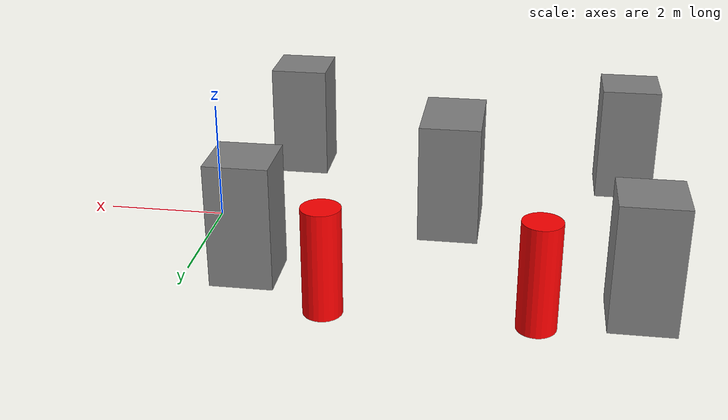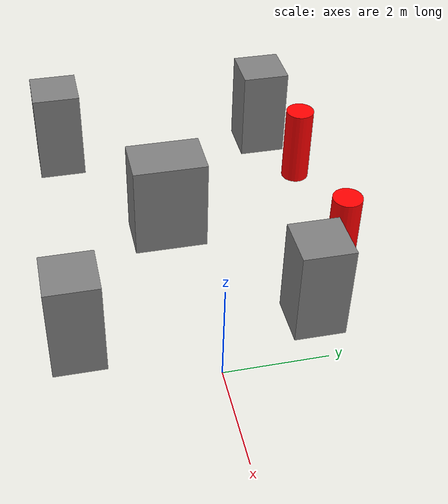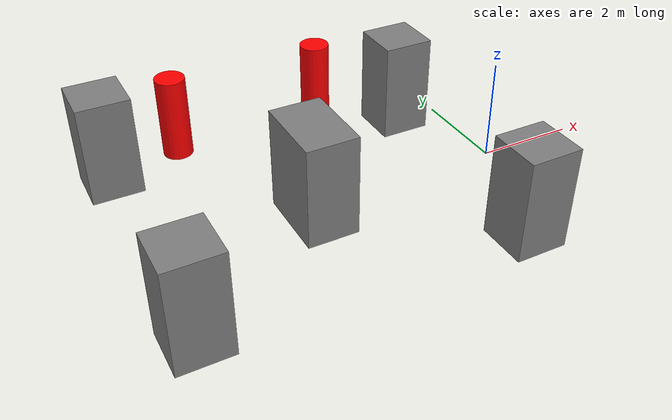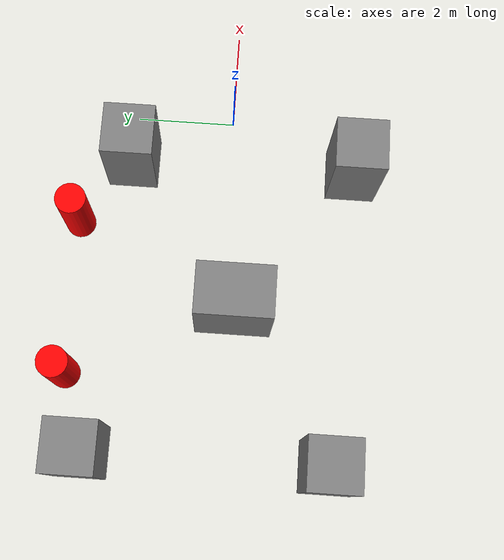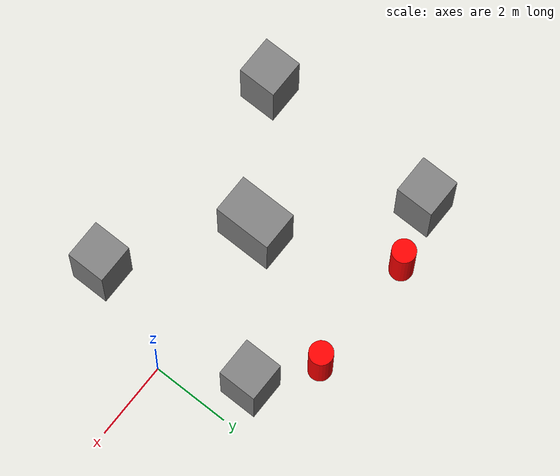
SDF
<sdf version='1.7'>
  <world name='default'>
    <!-- 动态障碍物：参考 generated_env.world 的格式 -->
    <!-- 障碍物1：从 (-2.38, 3) 到 (-2.38, -0.5) -->
    <model name='dynamic_cylinder_0_0.6_0.6_1.7'>
      <static>true</static>
      <pose>-2.38 3 0.85 0 0 0</pose> <!-- X, Y, Z, Roll, Pitch, Yaw -->
      <link name='link'>
        <visual name='visual'>
          <geometry>
            <cylinder>
              <radius>0.3</radius>
              <length>1.7</length>
            </cylinder>
          </geometry>
          <material>
            <ambient>1 0 0 1</ambient> <!-- Red color -->
            <diffuse>1 0 0 1</diffuse> <!-- Red color -->
            <specular>0.5 0.5 0.5 1</specular> <!-- Specular highlight -->
          </material>
        </visual>
      </link>
      <plugin name="obstacle_motion" filename="libobstaclePathPlugin.so">
        <orientation>false</orientation>
        <loop>1</loop>
        <velocity>0.4</velocity>
        <path>
          <waypoint>-2.38 3 0.85</waypoint>
          <waypoint>-2.38 -0.5 0.85</waypoint>
        </path>
      </plugin>
    </model>

    <!-- 障碍物2：从 (-5.5, 3) 到 (-5.5, -0.5) -->
    <model name='dynamic_cylinder_1_0.6_0.6_1.7'>
      <static>true</static>
      <pose>-5.5 3 0.85 0 0 0</pose> <!-- X, Y, Z, Roll, Pitch, Yaw -->
      <link name='link'>
        <visual name='visual'>
          <geometry>
            <cylinder>
              <radius>0.3</radius>
              <length>1.7</length>
            </cylinder>
          </geometry>
          <material>
            <ambient>1 0 0 1</ambient> <!-- Red color -->
            <diffuse>1 0 0 1</diffuse> <!-- Red color -->
            <specular>0.5 0.5 0.5 1</specular> <!-- Specular highlight -->
          </material>
        </visual>
      </link>
      <plugin name="obstacle_motion" filename="libobstaclePathPlugin.so">
        <orientation>false</orientation>
        <loop>1</loop>
        <velocity>0.4</velocity>
        <path>
          <waypoint>-5.5 3 0.85</waypoint>
          <waypoint>-5.5 -0.5 0.85</waypoint>
        </path>
      </plugin>
    </model>

    <!-- 静态长方体障碍物1 -->
    <model name='static_box_0'>
      <static>true</static>
      <pose>-1.0 2.0 1.0 0 0 0</pose> <!-- X, Y, Z(height/2), Roll, Pitch, Yaw -->
      <link name='link'>
        <visual name='visual'>
          <geometry>
            <box>
              <size>1.0 1.0 2.0</size> <!-- width, depth, height -->
            </box>
          </geometry>
          <material>
            <ambient>0.5 0.5 0.5 1</ambient> <!-- Gray color -->
            <diffuse>0.5 0.5 0.5 1</diffuse> <!-- Gray color -->
            <specular>0.3 0.3 0.3 1</specular> <!-- Specular highlight -->
          </material>
        </visual>
        <collision name='collision'>
          <geometry>
            <box>
              <size>1.0 1.0 2.0</size>
            </box>
          </geometry>
        </collision>
      </link>
    </model>

    <!-- 静态长方体障碍物2 -->
    <model name='static_box_1'>
      <static>true</static>
      <pose>-1.0 -2.5 1.0 0 0 0</pose>
      <link name='link'>
        <visual name='visual'>
          <geometry>
            <box>
              <size>1.0 1.0 2.0</size>
            </box>
          </geometry>
          <material>
            <ambient>0.5 0.5 0.5 1</ambient>
            <diffuse>0.5 0.5 0.5 1</diffuse>
            <specular>0.3 0.3 0.3 1</specular>
          </material>
        </visual>
        <collision name='collision'>
          <geometry>
            <box>
              <size>1.0 1.0 2.0</size>
            </box>
          </geometry>
        </collision>
      </link>
    </model>

    <!-- 静态长方体障碍物3 -->
    <model name='static_box_2'>
      <static>true</static>
      <pose>-7.0 2.5 1.0 0 0 0</pose>
      <link name='link'>
        <visual name='visual'>
          <geometry>
            <box>
              <size>1.0 1.0 2.0</size>
            </box>
          </geometry>
          <material>
            <ambient>0.5 0.5 0.5 1</ambient>
            <diffuse>0.5 0.5 0.5 1</diffuse>
            <specular>0.3 0.3 0.3 1</specular>
          </material>
        </visual>
        <collision name='collision'>
          <geometry>
            <box>
              <size>1.0 1.0 2.0</size>
            </box>
          </geometry>
        </collision>
      </link>
    </model>

    <!-- 静态长方体障碍物4 -->
    <model name='static_box_3'>
      <static>true</static>
      <pose>-7.0 -2.2 1.0 0 0 0</pose>
      <link name='link'>
        <visual name='visual'>
          <geometry>
            <box>
              <size>1.0 1.0 2.0</size>
            </box>
          </geometry>
          <material>
            <ambient>0.5 0.5 0.5 1</ambient>
            <diffuse>0.5 0.5 0.5 1</diffuse>
            <specular>0.3 0.3 0.3 1</specular>
          </material>
        </visual>
        <collision name='collision'>
          <geometry>
            <box>
              <size>1.0 1.0 2.0</size>
            </box>
          </geometry>
        </collision>
      </link>
    </model>

    <!-- 静态长方体障碍物5 -->
    <model name='static_box_4'>
      <static>true</static>
      <pose>-4.0 -0.25 1.0 0 0 0</pose>
      <link name='link'>
        <visual name='visual'>
          <geometry>
            <box>
              <size>1.0 1.5 2.0</size>
            </box>
          </geometry>
          <material>
            <ambient>0.5 0.5 0.5 1</ambient>
            <diffuse>0.5 0.5 0.5 1</diffuse>
            <specular>0.3 0.3 0.3 1</specular>
          </material>
        </visual>
        <collision name='collision'>
          <geometry>
            <box>
              <size>1.0 1.0 2.0</size>
            </box>
          </geometry>
        </collision>
      </link>
    </model>

    <light name='sun' type='directional'>
      <cast_shadows>1</cast_shadows>
      <pose>0 0 10 0 -0 0</pose>
      <diffuse>0.8 0.8 0.8 1</diffuse>
      <specular>0.2 0.2 0.2 1</specular>
      <attenuation>
        <range>1000</range>
        <constant>0.9</constant>
        <linear>0.01</linear>
        <quadratic>0.001</quadratic>
      </attenuation>
      <direction>-0.5 0.1 -0.9</direction>
      <spot>
        <inner_angle>0</inner_angle>
        <outer_angle>0</outer_angle>
        <falloff>0</falloff>
      </spot>
    </light>

    <model name='ground_plane'>
      <static>1</static>
      <link name='link'>
        <collision name='collision'>
          <geometry>
            <plane>
              <normal>0 0 1</normal>
              <size>100 100</size>
            </plane>
          </geometry>
        </collision>
      </link>
    </model>

    <physics type='ode'>
      <max_step_size>0.001</max_step_size>
      <real_time_factor>1</real_time_factor>
      <real_time_update_rate>1000</real_time_update_rate>
    </physics>

    <scene>
      <ambient>0.4 0.4 0.4 1</ambient>
      <background>0.7 0.7 0.7 1</background>
      <shadows>1</shadows>
    </scene>

    <gui fullscreen='0'>
      <camera name='user_camera'>
        <pose>6.39292 -16.0551 24.6198 0 0.913797 2.1162</pose>
        <view_controller>orbit</view_controller>
        <projection_type>perspective</projection_type>
      </camera>
    </gui>
  </world>
</sdf>
